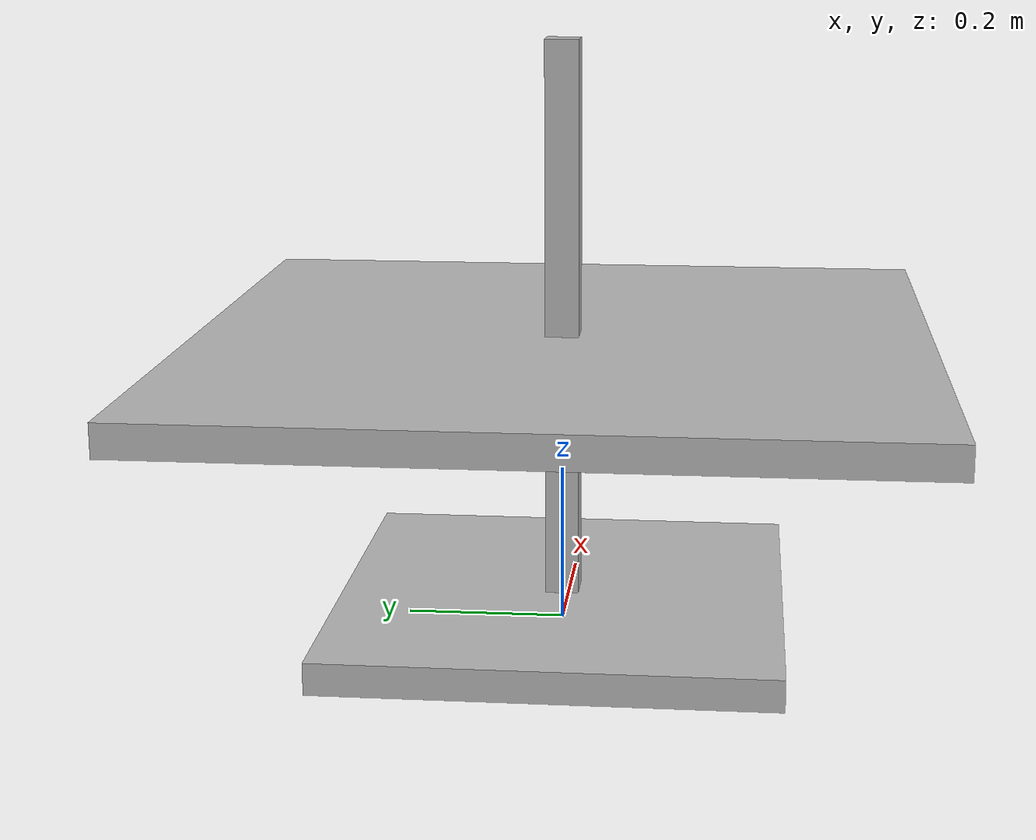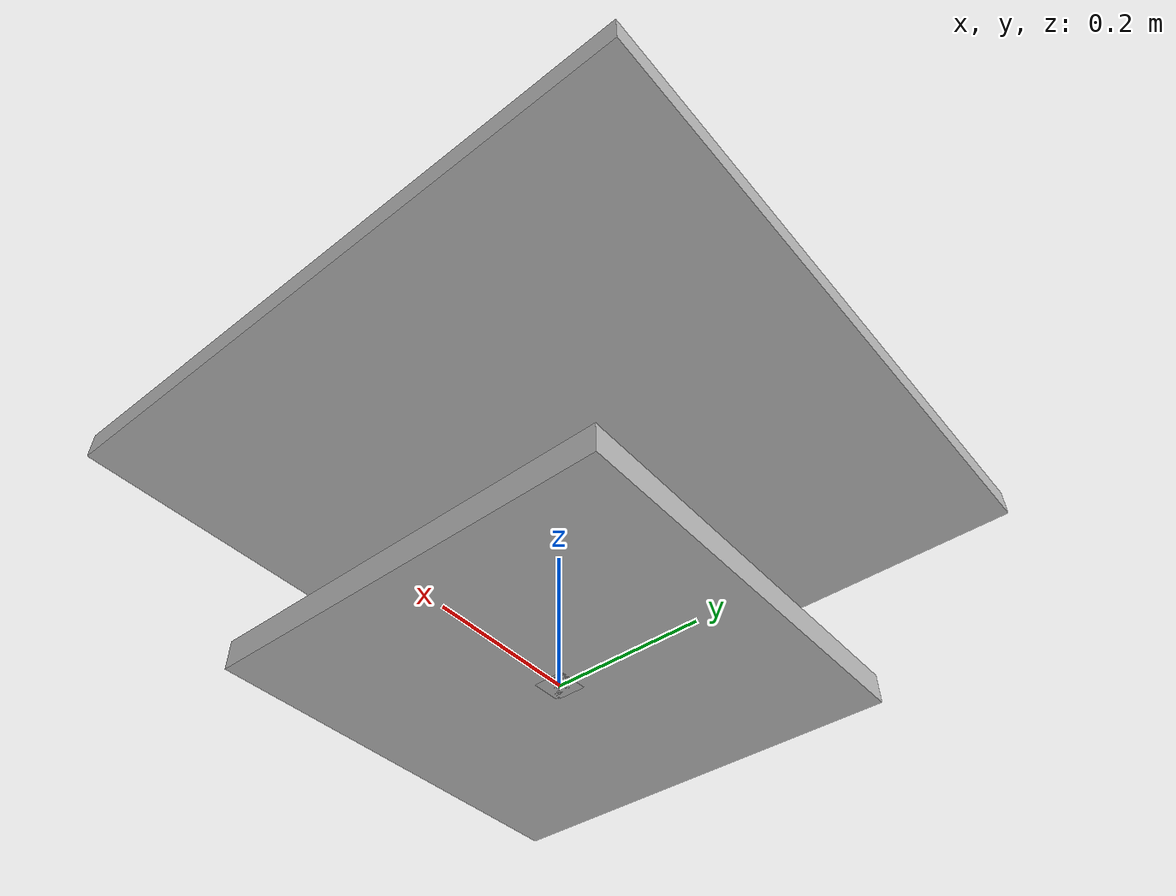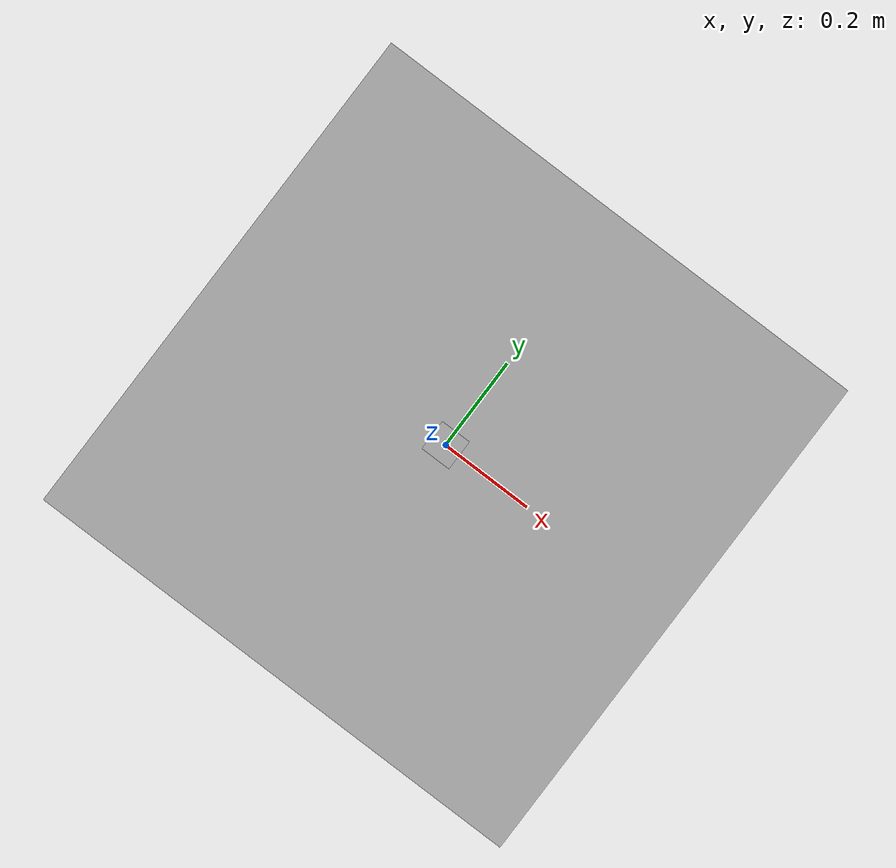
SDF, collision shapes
<?xml version="1.0" ?>
<sdf version="1.4">
  <model name="table">
    <static>true</static>
    <link name="link">
      <collision name="surface">
        <pose>0 0 0.355 0 0 0</pose>
        <geometry>
          <box>
            <size>0.913 0.913 0.04</size>
          </box>
        </geometry>
      </collision>

      <collision name="column">
        <pose>0 0 0.37 0 0 0</pose>
        <geometry>
          <box>
            <size>0.042 0.042 0.74</size>
          </box>
        </geometry>
      </collision>

      <collision name="base">
        <pose>0 0 0.02 0 0 0</pose>
        <geometry>
          <box>
            <size>0.56 0.56 0.04</size>
          </box>
        </geometry>
      </collision>

      <visual name="visual">
        <geometry>
          <mesh>
            <uri>model://table/meshes/cafe_table.dae</uri>
          </mesh>
        </geometry>
      </visual>
    </link>
  </model>
</sdf>
